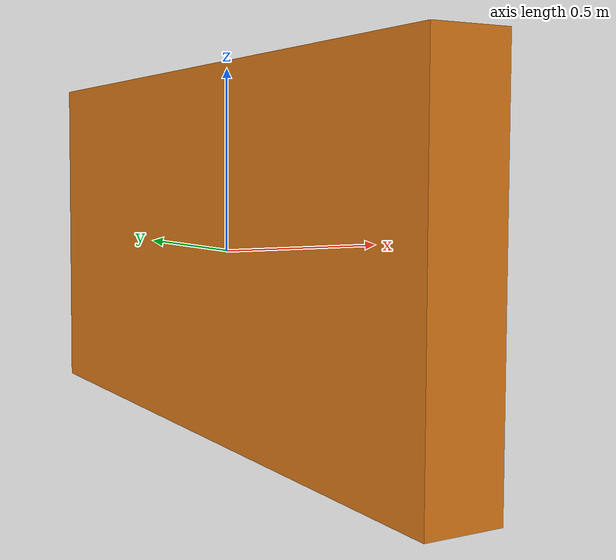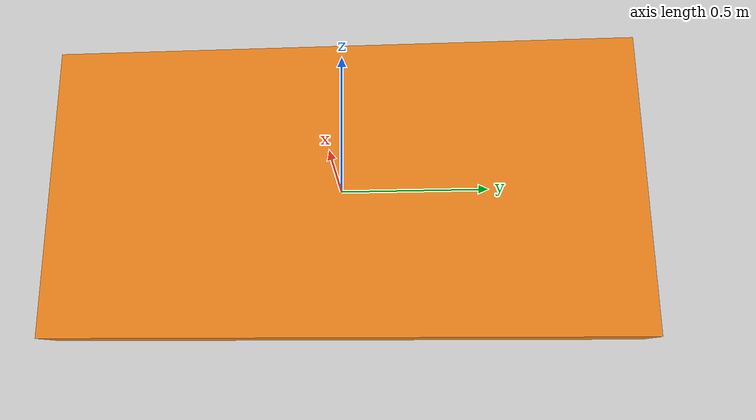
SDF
<?xml version="1.0" ?>
<sdf version="1.10">
  <model name="blockage_box">
    <static>true</static>
    <link name="link">
      <collision name="c">
        <geometry><box><size>0.2 2.0 1.0</size></box></geometry>
      </collision>
      <visual name="v">
        <geometry><box><size>0.2 2.0 1.0</size></box></geometry>
        <material>
          <ambient>0.9 0.5 0.1 1</ambient>
          <diffuse>0.9 0.5 0.1 1</diffuse>
        </material>
      </visual>
    </link>
  </model>
</sdf>
